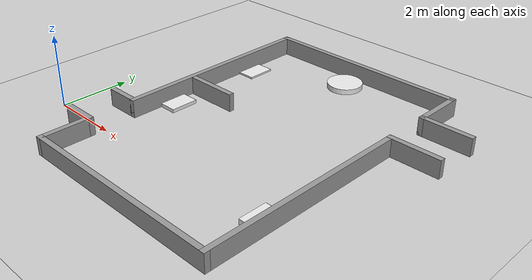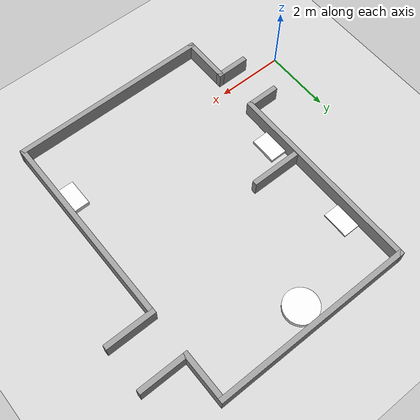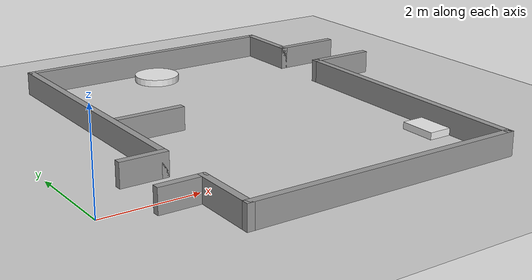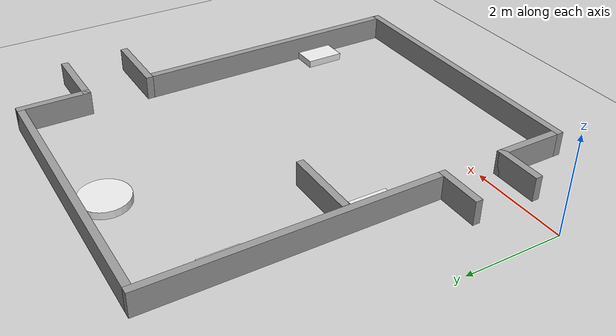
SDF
<sdf version="1.6">
 <world name="simple_world">
  <physics name="1ms" type="ignored">
   <max_step_size>0.001</max_step_size>
   <real_time_factor>1.0</real_time_factor>
  </physics>
  <plugin filename="gz-sim-physics-system" name="gz::sim::systems::Physics"/>
  <plugin filename="gz-sim-user-commands-system" name="gz::sim::systems::UserCommands"/>
  <plugin filename="gz-sim-scene-broadcaster-system" name="gz::sim::systems::SceneBroadcaster"/>
  <plugin filename="gz-sim-sensors-system" name="gz::sim::systems::Sensors">
   <render_engine>ogre2</render_engine>
  </plugin>
  <plugin filename="gz-sim-contact-system" name="gz::sim::systems::Contact"/>
  <light type="directional" name="sun">
   <pose>0 0 10 0 0 0</pose>
   <diffuse>0.8 0.8 0.8 1</diffuse>
   <specular>0.2 0.2 0.2 1</specular>
   <attenuation>
    <range>1000</range>
    <constant>0.9</constant>
    <linear>0.01</linear>
    <quadratic>0.001</quadratic>
   </attenuation>
   <direction>-0.5 0.1 -0.9</direction>
  </light>
  <model name="ground_plane">
   <static>true</static>
   <link name="link">
    <collision name="collision">
     <geometry><plane><normal>0 0 1</normal><size>100 100</size></plane></geometry>
    </collision>
    <visual name="visual">
     <geometry><plane><normal>0 0 1</normal><size>100 100</size></plane></geometry>
     <material>
      <ambient>0.8 0.8 0.8 1</ambient>
      <diffuse>0.8 0.8 0.8 1</diffuse>
      <specular>0.8 0.8 0.8 1</specular>
     </material>
    </visual>
   </link>
  </model>
  <model name="arena_for_work">
   <pose>4.5625 2.575 0 0 -0 0</pose>
   <link name="Wall_10">
    <collision name="Wall_10_Collision">
     <geometry><box><size>1 0.15 0.5</size></box></geometry>
     <pose>0 0 0.25 0 -0 0</pose>
    </collision>
    <visual name="Wall_10_Visual">
     <pose>0 0 0.25 0 -0 0</pose>
     <geometry><box><size>1 0.15 0.5</size></box></geometry>
     <material>
      <script><uri>file://media/materials/scripts/gazebo.material</uri><name>Gazebo/Grey</name></script>
      <ambient>1 1 1 1</ambient>
     </material>
     <meta><layer>0</layer></meta>
    </visual>
    <pose>-3.1375 -1.575 0 0 -0 0</pose>
   </link>
   <link name="Wall_25">
    <collision name="Wall_25_Collision">
     <geometry><box><size>6 0.15 0.5</size></box></geometry>
     <pose>0 0 0.25 0 -0 0</pose>
    </collision>
    <visual name="Wall_25_Visual">
     <pose>0 0 0.25 0 -0 0</pose>
     <geometry><box><size>6 0.15 0.5</size></box></geometry>
     <material>
      <script><uri>file://media/materials/scripts/gazebo.material</uri><name>Gazebo/Grey</name></script>
      <ambient>1 1 1 1</ambient>
     </material>
     <meta><layer>0</layer></meta>
    </visual>
    <pose>-2.7125 1.35 0 0 -0 1.5708</pose>
   </link>
   <link name="Wall_26">
    <collision name="Wall_26_Collision">
     <geometry><box><size>6 0.15 0.5</size></box></geometry>
     <pose>0 0 0.25 0 -0 0</pose>
    </collision>
    <visual name="Wall_26_Visual">
     <pose>0 0 0.25 0 -0 0</pose>
     <geometry><box><size>6 0.15 0.5</size></box></geometry>
     <material>
      <script><uri>file://media/materials/scripts/gazebo.material</uri><name>Gazebo/Grey</name></script>
      <ambient>1 1 1 1</ambient>
     </material>
     <meta><layer>0</layer></meta>
    </visual>
    <pose>0.2125 4.275 0 0 -0 0</pose>
   </link>
   <link name="Wall_27">
    <collision name="Wall_27_Collision">
     <geometry><box><size>1.5 0.15 0.5</size></box></geometry>
     <pose>0 0 0.25 0 -0 0</pose>
    </collision>
    <visual name="Wall_27_Visual">
     <pose>0 0 0.25 0 -0 0</pose>
     <geometry><box><size>1.5 0.15 0.5</size></box></geometry>
     <material>
      <script><uri>file://media/materials/scripts/gazebo.material</uri><name>Gazebo/Grey</name></script>
      <ambient>1 1 1 1</ambient>
     </material>
     <meta><layer>0</layer></meta>
    </visual>
    <pose>3.1375 3.6 0 0 -0 -1.5708</pose>
   </link>
   <link name="Wall_28">
    <collision name="Wall_28_Collision">
     <geometry><box><size>1.5 0.15 0.5</size></box></geometry>
     <pose>0 0 0.25 0 -0 0</pose>
    </collision>
    <visual name="Wall_28_Visual">
     <pose>0 0 0.25 0 -0 0</pose>
     <geometry><box><size>1.5 0.15 0.5</size></box></geometry>
     <material>
      <script><uri>file://media/materials/scripts/gazebo.material</uri><name>Gazebo/Grey</name></script>
      <ambient>1 1 1 1</ambient>
     </material>
     <meta><layer>0</layer></meta>
    </visual>
    <pose>3.8125 2.925 0 0 -0 0</pose>
   </link>
   <link name="Wall_30">
    <collision name="Wall_30_Collision">
     <geometry><box><size>1.5 0.15 0.5</size></box></geometry>
     <pose>0 0 0.25 0 -0 0</pose>
    </collision>
    <visual name="Wall_30_Visual">
     <pose>0 0 0.25 0 -0 0</pose>
     <geometry><box><size>1.5 0.15 0.5</size></box></geometry>
     <material>
      <script><uri>file://media/materials/scripts/gazebo.material</uri><name>Gazebo/Grey</name></script>
      <ambient>1 1 1 1</ambient>
     </material>
     <meta><layer>0</layer></meta>
    </visual>
    <pose>3.8125 1.575 0 0 -0 3.14159</pose>
   </link>
   <link name="Wall_31">
    <collision name="Wall_31_Collision">
     <geometry><box><size>6 0.15 0.5</size></box></geometry>
     <pose>0 0 0.25 0 -0 0</pose>
    </collision>
    <visual name="Wall_31_Visual">
     <pose>0 0 0.25 0 -0 0</pose>
     <geometry><box><size>6 0.15 0.5</size></box></geometry>
     <material>
      <script><uri>file://media/materials/scripts/gazebo.material</uri><name>Gazebo/Grey</name></script>
      <ambient>1 1 1 1</ambient>
     </material>
     <meta><layer>0</layer></meta>
    </visual>
    <pose>3.1375 -1.35 0 0 -0 -1.5708</pose>
   </link>
   <link name="Wall_32">
    <collision name="Wall_32_Collision">
     <geometry><box><size>6 0.15 0.5</size></box></geometry>
     <pose>0 0 0.25 0 -0 0</pose>
    </collision>
    <visual name="Wall_32_Visual">
     <pose>0 0 0.25 0 -0 0</pose>
     <geometry><box><size>6 0.15 0.5</size></box></geometry>
     <material>
      <script><uri>file://media/materials/scripts/gazebo.material</uri><name>Gazebo/Grey</name></script>
      <ambient>1 1 1 1</ambient>
     </material>
     <meta><layer>0</layer></meta>
    </visual>
    <pose>0.2125 -4.275 0 0 -0 3.14159</pose>
   </link>
   <link name="Wall_33">
    <collision name="Wall_33_Collision">
     <geometry><box><size>1.5 0.15 0.5</size></box></geometry>
     <pose>0 0 0.25 0 -0 0</pose>
    </collision>
    <visual name="Wall_33_Visual">
     <pose>0 0 0.25 0 -0 0</pose>
     <geometry><box><size>1.5 0.15 0.5</size></box></geometry>
     <material>
      <script><uri>file://media/materials/scripts/gazebo.material</uri><name>Gazebo/Grey</name></script>
      <ambient>1 1 1 1</ambient>
     </material>
     <meta><layer>0</layer></meta>
    </visual>
    <pose>-2.7125 -3.6 0 0 -0 1.5708</pose>
   </link>
   <link name="Wall_34">
    <collision name="Wall_34_Collision">
     <geometry><box><size>1 0.15 0.5</size></box></geometry>
     <pose>0 0 0.25 0 -0 0</pose>
    </collision>
    <visual name="Wall_34_Visual">
     <pose>0 0 0.25 0 -0 0</pose>
     <geometry><box><size>1 0.15 0.5</size></box></geometry>
     <material>
      <script><uri>file://media/materials/scripts/gazebo.material</uri><name>Gazebo/Grey</name></script>
      <ambient>1 1 1 1</ambient>
     </material>
     <meta><layer>0</layer></meta>
    </visual>
    <pose>-3.1375 -2.925 0 0 -0 3.14159</pose>
   </link>
   <static>1</static>
  </model>
  <model name="WS_10cm">
   <link name="link">
    <inertial>
     <mass>1</mass>
     <inertia>
      <ixx>0.166667</ixx>
      <ixy>0</ixy>
      <ixz>0</ixz>
      <iyy>0.166667</iyy>
      <iyz>0</iyz>
      <izz>0.166667</izz>
     </inertia>
    </inertial>
    <visual name="visual">
     <geometry><box><size>0.5 0.8 0.1</size></box></geometry>
     <material>
      <script><name>Gazebo/White</name><uri>file://media/materials/scripts/gazebo.material</uri></script>
      <shader type="pixel"><normal_map>__default__</normal_map></shader>
      <ambient>1 1 1 1</ambient>
      <diffuse>1 1 1 1</diffuse>
      <specular>1 1 1 1</specular>
      <emissive>1 1 1 1</emissive>
     </material>
    </visual>
    <collision name="collision">
     <geometry><box><size>0.5 0.8 0.1</size></box></geometry>
     <surface>
      <friction>
       <ode><mu>1</mu><mu2>1</mu2><fdir1>0 0 0</fdir1><slip1>0</slip1><slip2>0</slip2></ode>
       <torsional>
        <coefficient>1</coefficient>
        <patch_radius>0</patch_radius>
        <surface_radius>0</surface_radius>
        <use_patch_radius>1</use_patch_radius>
        <ode><slip>0</slip></ode>
       </torsional>
      </friction>
      <bounce><restitution_coefficient>0</restitution_coefficient><threshold>1e+06</threshold></bounce>
      <contact>
       <collide_without_contact>0</collide_without_contact>
       <collide_without_contact_bitmask>1</collide_without_contact_bitmask>
       <collide_bitmask>1</collide_bitmask>
       <ode>
        <soft_cfm>0</soft_cfm>
        <soft_erp>0.2</soft_erp>
        <kp>1e+13</kp>
        <kd>1</kd>
        <max_vel>0.01</max_vel>
        <min_depth>0</min_depth>
       </ode>
       <bullet>
        <split_impulse>1</split_impulse>
        <split_impulse_penetration_threshold>-0.01</split_impulse_penetration_threshold>
        <soft_cfm>0</soft_cfm>
        <soft_erp>0.2</soft_erp>
        <kp>1e+13</kp>
        <kd>1</kd>
       </bullet>
      </contact>
     </surface>
    </collision>
   </link>
   <static>0</static>
   <pose>2.17501 2.2184 0.05 0 0 -3e-06</pose>
  </model>
  <model name="WS_5cm">
   <link name="link">
    <inertial>
     <mass>1</mass>
     <inertia>
      <ixx>0.166667</ixx>
      <ixy>0</ixy>
      <ixz>0</ixz>
      <iyy>0.166667</iyy>
      <iyz>0</iyz>
      <izz>0.166667</izz>
     </inertia>
    </inertial>
    <visual name="visual">
     <geometry><box><size>0.5 0.8 0.05</size></box></geometry>
     <material>
      <script><name>Gazebo/White</name><uri>file://media/materials/scripts/gazebo.material</uri></script>
      <shader type="pixel"><normal_map>__default__</normal_map></shader>
      <ambient>1 1 1 1</ambient>
      <diffuse>1 1 1 1</diffuse>
      <specular>1 1 1 1</specular>
      <emissive>1 1 1 1</emissive>
     </material>
    </visual>
    <collision name="collision">
     <geometry><box><size>0.5 0.8 0.05</size></box></geometry>
     <surface>
      <friction>
       <ode><mu>1</mu><mu2>1</mu2><fdir1>0 0 0</fdir1><slip1>0</slip1><slip2>0</slip2></ode>
       <torsional>
        <coefficient>1</coefficient>
        <patch_radius>0</patch_radius>
        <surface_radius>0</surface_radius>
        <use_patch_radius>1</use_patch_radius>
        <ode><slip>0</slip></ode>
       </torsional>
      </friction>
      <bounce><restitution_coefficient>0</restitution_coefficient><threshold>1e+06</threshold></bounce>
      <contact>
       <collide_without_contact>0</collide_without_contact>
       <collide_without_contact_bitmask>1</collide_without_contact_bitmask>
       <collide_bitmask>1</collide_bitmask>
       <ode>
        <soft_cfm>0</soft_cfm>
        <soft_erp>0.2</soft_erp>
        <kp>1e+13</kp>
        <kd>1</kd>
        <max_vel>0.01</max_vel>
        <min_depth>0</min_depth>
       </ode>
       <bullet>
        <split_impulse>1</split_impulse>
        <split_impulse_penetration_threshold>-0.01</split_impulse_penetration_threshold>
        <soft_cfm>0</soft_cfm>
        <soft_erp>0.2</soft_erp>
        <kp>1e+13</kp>
        <kd>1</kd>
       </bullet>
      </contact>
     </surface>
    </collision>
   </link>
   <static>0</static>
   <pose>2.175 5.13879 0.025 0 -0 2e-06</pose>
  </model>
  <model name="WS_15cm">
   <link name="link">
    <inertial>
     <mass>1</mass>
     <inertia>
      <ixx>0.166667</ixx>
      <ixy>0</ixy>
      <ixz>0</ixz>
      <iyy>0.166667</iyy>
      <iyz>0</iyz>
      <izz>0.166667</izz>
     </inertia>
    </inertial>
    <visual name="visual">
     <geometry><box><size>0.5 0.8 0.15</size></box></geometry>
     <material>
      <script><name>Gazebo/White</name><uri>file://media/materials/scripts/gazebo.material</uri></script>
      <shader type="pixel"><normal_map>__default__</normal_map></shader>
      <ambient>1 1 1 1</ambient>
      <diffuse>1 1 1 1</diffuse>
      <specular>1 1 1 1</specular>
      <emissive>1 1 1 1</emissive>
     </material>
    </visual>
    <collision name="collision">
     <geometry><box><size>0.5 0.8 0.15</size></box></geometry>
     <surface>
      <friction>
       <ode><mu>1</mu><mu2>1</mu2><fdir1>0 0 0</fdir1><slip1>0</slip1><slip2>0</slip2></ode>
       <torsional>
        <coefficient>1</coefficient>
        <patch_radius>0</patch_radius>
        <surface_radius>0</surface_radius>
        <use_patch_radius>1</use_patch_radius>
        <ode><slip>0</slip></ode>
       </torsional>
      </friction>
      <bounce><restitution_coefficient>0</restitution_coefficient><threshold>1e+06</threshold></bounce>
      <contact>
       <collide_without_contact>0</collide_without_contact>
       <collide_without_contact_bitmask>1</collide_without_contact_bitmask>
       <collide_bitmask>1</collide_bitmask>
       <ode>
        <soft_cfm>0</soft_cfm>
        <soft_erp>0.2</soft_erp>
        <kp>1e+13</kp>
        <kd>1</kd>
        <max_vel>0.01</max_vel>
        <min_depth>0</min_depth>
       </ode>
       <bullet>
        <split_impulse>1</split_impulse>
        <split_impulse_penetration_threshold>-0.01</split_impulse_penetration_threshold>
        <soft_cfm>0</soft_cfm>
        <soft_erp>0.2</soft_erp>
        <kp>1e+13</kp>
        <kd>1</kd>
       </bullet>
      </contact>
     </surface>
    </collision>
   </link>
   <static>0</static>
   <pose>7.37066 0.12411 0.075 0 -0 0</pose>
  </model>
  <model name="rtt">
   <link name="link">
    <inertial>
     <mass>1</mass>
     <inertia><ixx>0.145833</ixx><ixy>0</ixy><ixz>0</ixz><iyy>0.145833</iyy><iyz>0</iyz><izz>0.125</izz></inertia>
    </inertial>
    <visual name="visual">
     <geometry><cylinder><radius>0.5</radius><length>0.15</length></cylinder></geometry>
     <material>
      <script><name>Gazebo/White</name><uri>file://media/materials/scripts/gazebo.material</uri></script>
      <shader type="pixel"><normal_map>__default__</normal_map></shader>
      <ambient>1 1 1 1</ambient>
      <diffuse>0.7 0.7 0.7 1</diffuse>
      <specular>0.01 0.01 0.01 1</specular>
      <emissive>0 0 0 1</emissive>
     </material>
    </visual>
    <collision name="collision">
     <geometry><cylinder><radius>0.5</radius><length>0.15</length></cylinder></geometry>
     <surface>
      <friction>
       <ode><mu>1</mu><mu2>1</mu2><fdir1>0 0 0</fdir1><slip1>0</slip1><slip2>0</slip2></ode>
       <torsional>
        <coefficient>1</coefficient>
        <patch_radius>0</patch_radius>
        <surface_radius>0</surface_radius>
        <use_patch_radius>1</use_patch_radius>
        <ode><slip>0</slip></ode>
       </torsional>
      </friction>
      <bounce><restitution_coefficient>0</restitution_coefficient><threshold>1e+06</threshold></bounce>
      <contact>
       <collide_without_contact>0</collide_without_contact>
       <collide_without_contact_bitmask>1</collide_without_contact_bitmask>
       <collide_bitmask>1</collide_bitmask>
       <ode>
        <soft_cfm>0</soft_cfm>
        <soft_erp>0.2</soft_erp>
        <kp>1e+13</kp>
        <kd>1</kd>
        <max_vel>0.01</max_vel>
        <min_depth>0</min_depth>
       </ode>
       <bullet>
        <split_impulse>1</split_impulse>
        <split_impulse_penetration_threshold>-0.01</split_impulse_penetration_threshold>
        <soft_cfm>0</soft_cfm>
        <soft_erp>0.2</soft_erp>
        <kp>1e+13</kp>
        <kd>1</kd>
       </bullet>
      </contact>
     </surface>
    </collision>
   </link>
   <static>0</static>
   <pose>4.65098 6.2523 0.075 0 -0 0</pose>
  </model>
  <model name="arena_for_work_0">
   <pose>1.7145 1.5375 0 0 -0 0</pose>
   <link name="Wall_43">
    <collision name="Wall_43_Collision">
     <geometry><box><size>1.5 0.15 0.5</size></box></geometry>
     <pose>0 0 0.25 0 -0 0</pose>
    </collision>
    <visual name="Wall_43_Visual">
     <pose>0 0 0.25 0 -0 0</pose>
     <geometry><box><size>1.5 0.15 0.5</size></box></geometry>
     <material>
      <script><uri>file://media/materials/scripts/gazebo.material</uri><name>Gazebo/Grey</name></script>
      <ambient>1 1 1 1</ambient>
     </material>
     <meta><layer>0</layer></meta>
    </visual>
    <pose>0.9645 1.4625 0 0 -0 0</pose>
   </link>
   <static>1</static>
  </model>
 </world>
</sdf>
